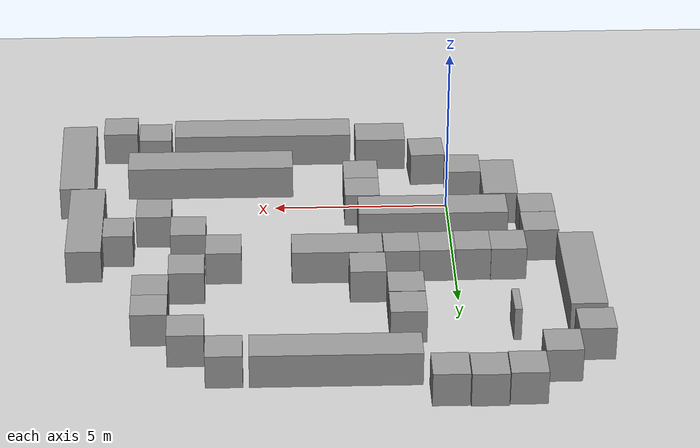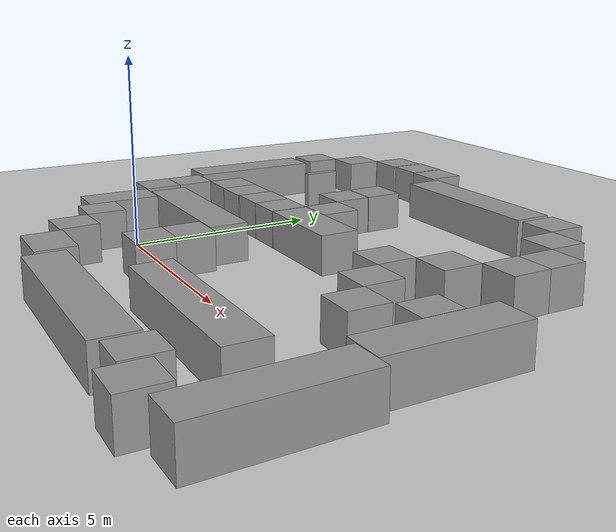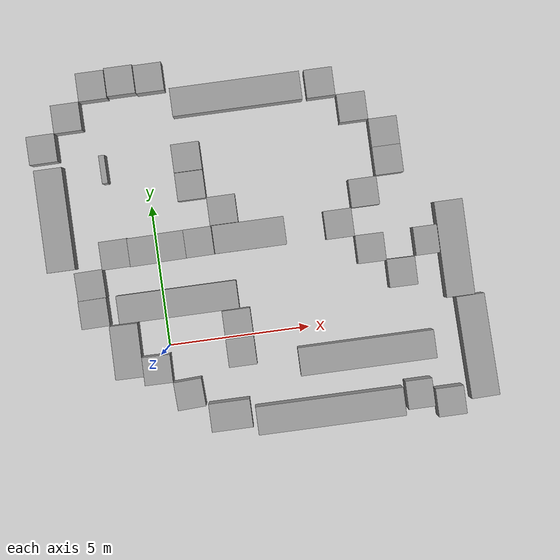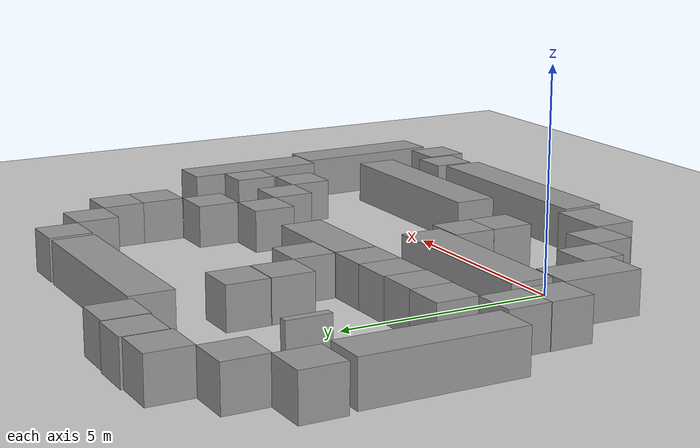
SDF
<sdf version="1.6">
 <world name="default">
  <light name="sun" type="directional">
   <pose>0 0 10 0 -0 0</pose>
   <diffuse>0.8 0.8 0.8 1</diffuse>
   <specular>0.2 0.2 0.2 1</specular>
   <attenuation>
    <range>1000</range>
    <constant>0.9</constant>
    <linear>0.01</linear>
    <quadratic>0.001</quadratic>
   </attenuation>
   <direction>-0.5 0.1 -0.9</direction>
  </light>
  <model name="ground_plane">
   <static>1</static>
   <link name="link">
    <collision name="collision">
     <geometry><plane><normal>0 0 1</normal><size>100 100</size></plane></geometry>
     <surface>
      <contact><collide_bitmask>65535</collide_bitmask></contact>
      <friction><ode><mu>100</mu><mu2>50</mu2></ode></friction>
     </surface>
    </collision>
    <visual name="visual">
     <cast_shadows>0</cast_shadows>
     <geometry><plane><normal>0 0 1</normal><size>100 100</size></plane></geometry>
     <material>
      <script><uri>file://media/materials/scripts/gazebo.material</uri><name>Gazebo/Grey</name></script>
     </material>
    </visual>
   </link>
  </model>
  <gravity>0 0 -9.8</gravity>
  <magnetic_field>6e-06 2.3e-05 -4.2e-05</magnetic_field>
  <atmosphere type="adiabatic"/>
  <physics name="default_physics" default="0" type="ode">
   <max_step_size>0.001</max_step_size>
   <real_time_factor>1</real_time_factor>
   <real_time_update_rate>1000</real_time_update_rate>
  </physics>
  <scene><ambient>0.4 0.4 0.4 1</ambient><background>0.7 0.7 0.7 1</background><shadows>1</shadows></scene>
  <audio><device>default</device></audio>
  <spherical_coordinates>
   <surface_model>EARTH_WGS84</surface_model>
   <latitude_deg>0</latitude_deg>
   <longitude_deg>0</longitude_deg>
   <elevation>0</elevation>
   <heading_deg>0</heading_deg>
  </spherical_coordinates>
  <model name="unit_box">
   <pose>-1.50485 0.02844 0.499995 0 -9e-06 -0.011423</pose>
   <link name="link">
    <inertial>
     <mass>1</mass>
     <inertia>
      <ixx>0.166667</ixx>
      <ixy>0</ixy>
      <ixz>0</ixz>
      <iyy>0.166667</iyy>
      <iyz>0</iyz>
      <izz>0.166667</izz>
     </inertia>
    </inertial>
    <collision name="collision"><geometry><box><size>1 1.90216 1</size></box></geometry></collision>
    <visual name="visual">
     <geometry><box><size>1 1.90216 1</size></box></geometry>
     <material>
      <script><name>Gazebo/Grey</name><uri>file://media/materials/scripts/gazebo.material</uri></script>
     </material>
    </visual>
   </link>
  </model>
  <model name="unit_box_0">
   <pose>0.509835 1.51401 0.498985 0 0.000476 -3.7e-05</pose>
   <link name="link">
    <inertial>
     <mass>1</mass>
     <inertia>
      <ixx>0.166667</ixx>
      <ixy>0</ixy>
      <ixz>0</ixz>
      <iyy>0.166667</iyy>
      <iyz>0</iyz>
      <izz>0.166667</izz>
     </inertia>
    </inertial>
    <collision name="collision"><geometry><box><size>4.26633 1 1</size></box></geometry></collision>
    <visual name="visual">
     <geometry><box><size>4.26633 1 1</size></box></geometry>
     <material>
      <script><name>Gazebo/Grey</name><uri>file://media/materials/scripts/gazebo.material</uri></script>
     </material>
    </visual>
   </link>
  </model>
  <model name="unit_box_1">
   <pose>-0.513737 -0.75613 0.499995 0 -1e-05 -0.011468</pose>
   <link name="link">
    <inertial>
     <mass>1</mass>
     <inertia>
      <ixx>0.166667</ixx>
      <ixy>0</ixy>
      <ixz>0</ixz>
      <iyy>0.166667</iyy>
      <iyz>0</iyz>
      <izz>0.166667</izz>
     </inertia>
    </inertial>
    <collision name="collision"><geometry><box><size>1 1 1</size></box></geometry></collision>
    <visual name="visual">
     <geometry><box><size>1 1 1</size></box></geometry>
     <material>
      <script><name>Gazebo/Grey</name><uri>file://media/materials/scripts/gazebo.material</uri></script>
     </material>
    </visual>
   </link>
  </model>
  <model name="unit_box_2">
   <pose>0.498108 -1.75722 0.499995 1e-05 -0 0.043704</pose>
   <link name="link">
    <inertial>
     <mass>1</mass>
     <inertia>
      <ixx>0.166667</ixx>
      <ixy>0</ixy>
      <ixz>0</ixz>
      <iyy>0.166667</iyy>
      <iyz>0</iyz>
      <izz>0.166667</izz>
     </inertia>
    </inertial>
    <collision name="collision"><geometry><box><size>1 1 1</size></box></geometry></collision>
    <visual name="visual">
     <geometry><box><size>1 1 1</size></box></geometry>
     <material>
      <script><name>Gazebo/Grey</name><uri>file://media/materials/scripts/gazebo.material</uri></script>
     </material>
    </visual>
   </link>
  </model>
  <model name="unit_box_3">
   <pose>2.50413 0.489558 0.499995 1e-05 -0 0</pose>
   <link name="link">
    <inertial>
     <mass>1</mass>
     <inertia>
      <ixx>0.166667</ixx>
      <ixy>0</ixy>
      <ixz>0</ixz>
      <iyy>0.166667</iyy>
      <iyz>0</iyz>
      <izz>0.166667</izz>
     </inertia>
    </inertial>
    <collision name="collision"><geometry><box><size>0.998332 1 1</size></box></geometry></collision>
    <visual name="visual">
     <geometry><box><size>0.998332 1 1</size></box></geometry>
     <material>
      <script><name>Gazebo/Grey</name><uri>file://media/materials/scripts/gazebo.material</uri></script>
     </material>
    </visual>
   </link>
  </model>
  <model name="unit_box_4">
   <pose>1.83355 -2.68893 0.5 0 0 -0.000654</pose>
   <link name="link">
    <inertial>
     <mass>1</mass>
     <inertia>
      <ixx>0.166667</ixx>
      <ixy>0</ixy>
      <ixz>0</ixz>
      <iyy>0.166667</iyy>
      <iyz>0</iyz>
      <izz>0.166667</izz>
     </inertia>
    </inertial>
    <collision name="collision"><geometry><box><size>1.46649 1 1</size></box></geometry></collision>
    <visual name="visual">
     <geometry><box><size>1.46649 1 1</size></box></geometry>
     <material>
      <script><name>Gazebo/Grey</name><uri>file://media/materials/scripts/gazebo.material</uri></script>
     </material>
    </visual>
   </link>
  </model>
  <model name="unit_box_5">
   <pose>2.50231 -0.510458 0.499995 -1e-05 -0 -1.2e-05</pose>
   <link name="link">
    <inertial>
     <mass>1</mass>
     <inertia>
      <ixx>0.166667</ixx>
      <ixy>0</ixy>
      <ixz>0</ixz>
      <iyy>0.166667</iyy>
      <iyz>0</iyz>
      <izz>0.166667</izz>
     </inertia>
    </inertial>
    <collision name="collision"><geometry><box><size>1 1 1</size></box></geometry></collision>
    <visual name="visual">
     <geometry><box><size>1 1 1</size></box></geometry>
     <material>
      <script><name>Gazebo/Grey</name><uri>file://media/materials/scripts/gazebo.material</uri></script>
     </material>
    </visual>
   </link>
  </model>
  <model name="unit_box_6">
   <pose>6.89169 -1.14697 0.498194 0 -0.000749 1.1e-05</pose>
   <link name="link">
    <inertial>
     <mass>1</mass>
     <inertia>
      <ixx>0.166667</ixx>
      <ixy>0</ixy>
      <ixz>0</ixz>
      <iyy>0.166667</iyy>
      <iyz>0</iyz>
      <izz>0.166667</izz>
     </inertia>
    </inertial>
    <collision name="collision"><geometry><box><size>4.82742 1 1</size></box></geometry></collision>
    <visual name="visual">
     <geometry><box><size>4.82742 1 1</size></box></geometry>
     <material>
      <script><name>Gazebo/Grey</name><uri>file://media/materials/scripts/gazebo.material</uri></script>
     </material>
    </visual>
   </link>
  </model>
  <model name="unit_box_7">
   <pose>9.59094 -3.22558 0.499995 -1e-05 0 7.1e-05</pose>
   <link name="link">
    <inertial>
     <mass>1</mass>
     <inertia>
      <ixx>0.166667</ixx>
      <ixy>0</ixy>
      <ixz>0</ixz>
      <iyy>0.166667</iyy>
      <iyz>0</iyz>
      <izz>0.166667</izz>
     </inertia>
    </inertial>
    <collision name="collision"><geometry><box><size>1 1 1</size></box></geometry></collision>
    <visual name="visual">
     <geometry><box><size>1 1 1</size></box></geometry>
     <material>
      <script><name>Gazebo/Grey</name><uri>file://media/materials/scripts/gazebo.material</uri></script>
     </material>
    </visual>
   </link>
  </model>
  <model name="unit_box_8">
   <pose>5.3468 -3.01007 0.499996 -7e-06 0 -0.00087</pose>
   <link name="link">
    <inertial>
     <mass>1</mass>
     <inertia>
      <ixx>0.166667</ixx>
      <ixy>0</ixy>
      <ixz>0</ixz>
      <iyy>0.166667</iyy>
      <iyz>0</iyz>
      <izz>0.166667</izz>
     </inertia>
    </inertial>
    <collision name="collision"><geometry><box><size>5.24415 1 1</size></box></geometry></collision>
    <visual name="visual">
     <geometry><box><size>5.24415 1 1</size></box></geometry>
     <material>
      <script><name>Gazebo/Grey</name><uri>file://media/materials/scripts/gazebo.material</uri></script>
     </material>
    </visual>
   </link>
  </model>
  <model name="unit_box_9">
   <pose>8.54505 -2.81941 0.5 0 0 -0.001685</pose>
   <link name="link">
    <inertial>
     <mass>1</mass>
     <inertia>
      <ixx>0.166667</ixx>
      <ixy>0</ixy>
      <ixz>0</ixz>
      <iyy>0.166667</iyy>
      <iyz>0</iyz>
      <izz>0.166667</izz>
     </inertia>
    </inertial>
    <collision name="collision"><geometry><box><size>0.9506 1 1</size></box></geometry></collision>
    <visual name="visual">
     <geometry><box><size>0.9506 1 1</size></box></geometry>
     <material>
      <script><name>Gazebo/Grey</name><uri>file://media/materials/scripts/gazebo.material</uri></script>
     </material>
    </visual>
   </link>
  </model>
  <model name="unit_box_10">
   <pose>10.4168 2.10106 0.499668 -0.000196 -0 -4.1e-05</pose>
   <link name="link">
    <inertial>
     <mass>1</mass>
     <inertia>
      <ixx>0.166667</ixx>
      <ixy>0</ixy>
      <ixz>0</ixz>
      <iyy>0.166667</iyy>
      <iyz>0</iyz>
      <izz>0.166667</izz>
     </inertia>
    </inertial>
    <collision name="collision"><geometry><box><size>1 3.39208 1</size></box></geometry></collision>
    <visual name="visual">
     <geometry><box><size>1 3.39208 1</size></box></geometry>
     <material>
      <script><name>Gazebo/Grey</name><uri>file://media/materials/scripts/gazebo.material</uri></script>
     </material>
    </visual>
   </link>
  </model>
  <model name="unit_box_11">
   <pose>9.47993 2.5147 0.5 0 -0 -0.002124</pose>
   <link name="link">
    <inertial>
     <mass>1</mass>
     <inertia>
      <ixx>0.166667</ixx>
      <ixy>0</ixy>
      <ixz>0</ixz>
      <iyy>0.166667</iyy>
      <iyz>0</iyz>
      <izz>0.166667</izz>
     </inertia>
    </inertial>
    <collision name="collision"><geometry><box><size>0.854078 1 1</size></box></geometry></collision>
    <visual name="visual">
     <geometry><box><size>0.854078 1 1</size></box></geometry>
     <material>
      <script><name>Gazebo/Grey</name><uri>file://media/materials/scripts/gazebo.material</uri></script>
     </material>
    </visual>
   </link>
  </model>
  <model name="unit_box_12">
   <pose>8.48896 1.51338 0.499995 -1e-05 -0 -0.010852</pose>
   <link name="link">
    <inertial>
     <mass>1</mass>
     <inertia>
      <ixx>0.166667</ixx>
      <ixy>0</ixy>
      <ixz>0</ixz>
      <iyy>0.166667</iyy>
      <iyz>0</iyz>
      <izz>0.166667</izz>
     </inertia>
    </inertial>
    <collision name="collision"><geometry><box><size>1 1 1</size></box></geometry></collision>
    <visual name="visual">
     <geometry><box><size>1 1 1</size></box></geometry>
     <material>
      <script><name>Gazebo/Grey</name><uri>file://media/materials/scripts/gazebo.material</uri></script>
     </material>
    </visual>
   </link>
  </model>
  <model name="unit_box_13">
   <pose>7.49826 2.49474 0.499995 -0 1e-05 -0.00839</pose>
   <link name="link">
    <inertial>
     <mass>1</mass>
     <inertia>
      <ixx>0.166667</ixx>
      <ixy>0</ixy>
      <ixz>0</ixz>
      <iyy>0.166667</iyy>
      <iyz>0</iyz>
      <izz>0.166667</izz>
     </inertia>
    </inertial>
    <collision name="collision"><geometry><box><size>1 1 1</size></box></geometry></collision>
    <visual name="visual">
     <geometry><box><size>1 1 1</size></box></geometry>
     <material>
      <script><name>Gazebo/Grey</name><uri>file://media/materials/scripts/gazebo.material</uri></script>
     </material>
    </visual>
   </link>
  </model>
  <model name="unit_box_14">
   <pose>6.49979 3.49003 0.499995 1e-05 -0 0</pose>
   <link name="link">
    <inertial>
     <mass>1</mass>
     <inertia>
      <ixx>0.166667</ixx>
      <ixy>0</ixy>
      <ixz>0</ixz>
      <iyy>0.166667</iyy>
      <iyz>0</iyz>
      <izz>0.166667</izz>
     </inertia>
    </inertial>
    <collision name="collision"><geometry><box><size>1 1 1</size></box></geometry></collision>
    <visual name="visual">
     <geometry><box><size>1 1 1</size></box></geometry>
     <material>
      <script><name>Gazebo/Grey</name><uri>file://media/materials/scripts/gazebo.material</uri></script>
     </material>
    </visual>
   </link>
  </model>
  <model name="unit_box_15">
   <pose>7.52273 4.47832 0.499995 0 1e-05 0</pose>
   <link name="link">
    <inertial>
     <mass>1</mass>
     <inertia>
      <ixx>0.166667</ixx>
      <ixy>0</ixy>
      <ixz>0</ixz>
      <iyy>0.166667</iyy>
      <iyz>0</iyz>
      <izz>0.166667</izz>
     </inertia>
    </inertial>
    <collision name="collision"><geometry><box><size>1 1 1</size></box></geometry></collision>
    <visual name="visual">
     <geometry><box><size>1 1 1</size></box></geometry>
     <material>
      <script><name>Gazebo/Grey</name><uri>file://media/materials/scripts/gazebo.material</uri></script>
     </material>
    </visual>
   </link>
  </model>
  <model name="unit_box_16">
   <pose>8.5092 5.49916 0.499995 0 1e-05 6e-06</pose>
   <link name="link">
    <inertial>
     <mass>1</mass>
     <inertia>
      <ixx>0.166667</ixx>
      <ixy>0</ixy>
      <ixz>0</ixz>
      <iyy>0.166667</iyy>
      <iyz>0</iyz>
      <izz>0.166667</izz>
     </inertia>
    </inertial>
    <collision name="collision"><geometry><box><size>1 1 1</size></box></geometry></collision>
    <visual name="visual">
     <geometry><box><size>1 1 1</size></box></geometry>
     <material>
      <script><name>Gazebo/Grey</name><uri>file://media/materials/scripts/gazebo.material</uri></script>
     </material>
    </visual>
   </link>
  </model>
  <model name="unit_box_17">
   <pose>8.50912 6.49918 0.499995 1e-05 -0 -8e-06</pose>
   <link name="link">
    <inertial>
     <mass>1</mass>
     <inertia>
      <ixx>0.166667</ixx>
      <ixy>0</ixy>
      <ixz>0</ixz>
      <iyy>0.166667</iyy>
      <iyz>0</iyz>
      <izz>0.166667</izz>
     </inertia>
    </inertial>
    <collision name="collision"><geometry><box><size>1 1 1</size></box></geometry></collision>
    <visual name="visual">
     <geometry><box><size>1 1 1</size></box></geometry>
     <material>
      <script><name>Gazebo/Grey</name><uri>file://media/materials/scripts/gazebo.material</uri></script>
     </material>
    </visual>
   </link>
  </model>
  <model name="unit_box_18">
   <pose>7.51204 7.50422 0.499995 1e-05 -0 0</pose>
   <link name="link">
    <inertial>
     <mass>1</mass>
     <inertia>
      <ixx>0.166667</ixx>
      <ixy>0</ixy>
      <ixz>0</ixz>
      <iyy>0.166667</iyy>
      <iyz>0</iyz>
      <izz>0.166667</izz>
     </inertia>
    </inertial>
    <collision name="collision"><geometry><box><size>1 1 1</size></box></geometry></collision>
    <visual name="visual">
     <geometry><box><size>1 1 1</size></box></geometry>
     <material>
      <script><name>Gazebo/Grey</name><uri>file://media/materials/scripts/gazebo.material</uri></script>
     </material>
    </visual>
   </link>
  </model>
  <model name="unit_box_19">
   <pose>6.48276 8.50432 0.499995 0 1e-05 0</pose>
   <link name="link">
    <inertial>
     <mass>1</mass>
     <inertia>
      <ixx>0.166667</ixx>
      <ixy>0</ixy>
      <ixz>0</ixz>
      <iyy>0.166667</iyy>
      <iyz>0</iyz>
      <izz>0.166667</izz>
     </inertia>
    </inertial>
    <collision name="collision"><geometry><box><size>1 1 1</size></box></geometry></collision>
    <visual name="visual">
     <geometry><box><size>1 1 1</size></box></geometry>
     <material>
      <script><name>Gazebo/Grey</name><uri>file://media/materials/scripts/gazebo.material</uri></script>
     </material>
    </visual>
   </link>
  </model>
  <model name="unit_box_20">
   <pose>3.51808 8.50572 0.498555 0 -0.000628 6e-06</pose>
   <link name="link">
    <inertial>
     <mass>1</mass>
     <inertia>
      <ixx>0.166667</ixx>
      <ixy>0</ixy>
      <ixz>0</ixz>
      <iyy>0.166667</iyy>
      <iyz>0</iyz>
      <izz>0.166667</izz>
     </inertia>
    </inertial>
    <collision name="collision"><geometry><box><size>4.60016 1 1</size></box></geometry></collision>
    <visual name="visual">
     <geometry><box><size>4.60016 1 1</size></box></geometry>
     <material>
      <script><name>Gazebo/Grey</name><uri>file://media/materials/scripts/gazebo.material</uri></script>
     </material>
    </visual>
   </link>
  </model>
  <model name="unit_box_21">
   <pose>3.32061 3.51766 0.499929 0 -5.6e-05 0</pose>
   <link name="link">
    <inertial>
     <mass>1</mass>
     <inertia>
      <ixx>0.166667</ixx>
      <ixy>0</ixy>
      <ixz>0</ixz>
      <iyy>0.166667</iyy>
      <iyz>0</iyz>
      <izz>0.166667</izz>
     </inertia>
    </inertial>
    <collision name="collision"><geometry><box><size>2.5494 1 1</size></box></geometry></collision>
    <visual name="visual">
     <geometry><box><size>2.5494 1 1</size></box></geometry>
     <material>
      <script><name>Gazebo/Grey</name><uri>file://media/materials/scripts/gazebo.material</uri></script>
     </material>
    </visual>
   </link>
  </model>
  <model name="unit_box_22">
   <pose>2.50228 4.52942 0.499995 0 1e-05 0</pose>
   <link name="link">
    <inertial>
     <mass>1</mass>
     <inertia>
      <ixx>0.166667</ixx>
      <ixy>0</ixy>
      <ixz>0</ixz>
      <iyy>0.166667</iyy>
      <iyz>0</iyz>
      <izz>0.166667</izz>
     </inertia>
    </inertial>
    <collision name="collision"><geometry><box><size>1 1 1</size></box></geometry></collision>
    <visual name="visual">
     <geometry><box><size>1 1 1</size></box></geometry>
     <material>
      <script><name>Gazebo/Grey</name><uri>file://media/materials/scripts/gazebo.material</uri></script>
     </material>
    </visual>
   </link>
  </model>
  <model name="unit_box_23">
   <pose>1.49501 5.52177 0.499995 1e-05 0 -0.001746</pose>
   <link name="link">
    <inertial>
     <mass>1</mass>
     <inertia>
      <ixx>0.166667</ixx>
      <ixy>0</ixy>
      <ixz>0</ixz>
      <iyy>0.166667</iyy>
      <iyz>0</iyz>
      <izz>0.166667</izz>
     </inertia>
    </inertial>
    <collision name="collision"><geometry><box><size>1 1 1</size></box></geometry></collision>
    <visual name="visual">
     <geometry><box><size>1 1 1</size></box></geometry>
     <material>
      <script><name>Gazebo/Grey</name><uri>file://media/materials/scripts/gazebo.material</uri></script>
     </material>
    </visual>
   </link>
  </model>
  <model name="unit_box_24">
   <pose>1.52734 3.51078 0.499995 0 1e-05 0.00732</pose>
   <link name="link">
    <inertial>
     <mass>1</mass>
     <inertia>
      <ixx>0.166667</ixx>
      <ixy>0</ixy>
      <ixz>0</ixz>
      <iyy>0.166667</iyy>
      <iyz>0</iyz>
      <izz>0.166667</izz>
     </inertia>
    </inertial>
    <collision name="collision"><geometry><box><size>1 1 1</size></box></geometry></collision>
    <visual name="visual">
     <geometry><box><size>1 1 1</size></box></geometry>
     <material>
      <script><name>Gazebo/Grey</name><uri>file://media/materials/scripts/gazebo.material</uri></script>
     </material>
    </visual>
   </link>
  </model>
  <model name="unit_box_25">
   <pose>0.527362 3.49975 0.499995 0 1e-05 0.007321</pose>
   <link name="link">
    <inertial>
     <mass>1</mass>
     <inertia>
      <ixx>0.166667</ixx>
      <ixy>0</ixy>
      <ixz>0</ixz>
      <iyy>0.166667</iyy>
      <iyz>0</iyz>
      <izz>0.166667</izz>
     </inertia>
    </inertial>
    <collision name="collision"><geometry><box><size>1 1 1</size></box></geometry></collision>
    <visual name="visual">
     <geometry><box><size>1 1 1</size></box></geometry>
     <material>
      <script><name>Gazebo/Grey</name><uri>file://media/materials/scripts/gazebo.material</uri></script>
     </material>
    </visual>
   </link>
  </model>
  <model name="unit_box_26">
   <pose>-0.472465 3.47009 0.499995 0 1e-05 0.00735</pose>
   <link name="link">
    <inertial>
     <mass>1</mass>
     <inertia>
      <ixx>0.166667</ixx>
      <ixy>0</ixy>
      <ixz>0</ixz>
      <iyy>0.166667</iyy>
      <iyz>0</iyz>
      <izz>0.166667</izz>
     </inertia>
    </inertial>
    <collision name="collision"><geometry><box><size>1 1 1</size></box></geometry></collision>
    <visual name="visual">
     <geometry><box><size>1 1 1</size></box></geometry>
     <material>
      <script><name>Gazebo/Grey</name><uri>file://media/materials/scripts/gazebo.material</uri></script>
     </material>
    </visual>
   </link>
  </model>
  <model name="unit_box_27">
   <pose>-1.47264 3.47931 0.499995 0 1e-05 0.007503</pose>
   <link name="link">
    <inertial>
     <mass>1</mass>
     <inertia>
      <ixx>0.166667</ixx>
      <ixy>0</ixy>
      <ixz>0</ixz>
      <iyy>0.166667</iyy>
      <iyz>0</iyz>
      <izz>0.166667</izz>
     </inertia>
    </inertial>
    <collision name="collision"><geometry><box><size>1 1 1</size></box></geometry></collision>
    <visual name="visual">
     <geometry><box><size>1 1 1</size></box></geometry>
     <material>
      <script><name>Gazebo/Grey</name><uri>file://media/materials/scripts/gazebo.material</uri></script>
     </material>
    </visual>
   </link>
  </model>
  <model name="unit_box_28">
   <pose>-2.46034 2.5099 0.499995 0 1e-05 0.018547</pose>
   <link name="link">
    <inertial>
     <mass>1</mass>
     <inertia>
      <ixx>0.166667</ixx>
      <ixy>0</ixy>
      <ixz>0</ixz>
      <iyy>0.166667</iyy>
      <iyz>0</iyz>
      <izz>0.166667</izz>
     </inertia>
    </inertial>
    <collision name="collision"><geometry><box><size>1 1 1</size></box></geometry></collision>
    <visual name="visual">
     <geometry><box><size>1 1 1</size></box></geometry>
     <material>
      <script><name>Gazebo/Grey</name><uri>file://media/materials/scripts/gazebo.material</uri></script>
     </material>
    </visual>
   </link>
  </model>
  <model name="unit_box_29">
   <pose>-2.46101 1.50724 0.499995 0 1e-05 0.013449</pose>
   <link name="link">
    <inertial>
     <mass>1</mass>
     <inertia>
      <ixx>0.166667</ixx>
      <ixy>0</ixy>
      <ixz>0</ixz>
      <iyy>0.166667</iyy>
      <iyz>0</iyz>
      <izz>0.166667</izz>
     </inertia>
    </inertial>
    <collision name="collision"><geometry><box><size>1 1 1</size></box></geometry></collision>
    <visual name="visual">
     <geometry><box><size>1 1 1</size></box></geometry>
     <material>
      <script><name>Gazebo/Grey</name><uri>file://media/materials/scripts/gazebo.material</uri></script>
     </material>
    </visual>
   </link>
  </model>
  <model name="unit_box_30">
   <pose>1.49594 6.53453 0.499995 -1e-05 -0 0.001756</pose>
   <link name="link">
    <inertial>
     <mass>1</mass>
     <inertia>
      <ixx>0.166667</ixx>
      <ixy>0</ixy>
      <ixz>0</ixz>
      <iyy>0.166667</iyy>
      <iyz>0</iyz>
      <izz>0.166667</izz>
     </inertia>
    </inertial>
    <collision name="collision"><geometry><box><size>1 1 1</size></box></geometry></collision>
    <visual name="visual">
     <geometry><box><size>1 1 1</size></box></geometry>
     <material>
      <script><name>Gazebo/Grey</name><uri>file://media/materials/scripts/gazebo.material</uri></script>
     </material>
    </visual>
   </link>
  </model>
  <model name="unit_box_31">
   <pose>-1.45807 6.49243 0.499997 7e-06 1e-06 0.006836</pose>
   <link name="link">
    <inertial>
     <mass>1</mass>
     <inertia>
      <ixx>0.166667</ixx>
      <ixy>0</ixy>
      <ixz>0</ixz>
      <iyy>0.166667</iyy>
      <iyz>0</iyz>
      <izz>0.166667</izz>
     </inertia>
    </inertial>
    <collision name="collision"><geometry><box><size>0.204187 1 1</size></box></geometry></collision>
    <visual name="visual">
     <geometry><box><size>0.204187 1 1</size></box></geometry>
     <material>
      <script><name>Gazebo/Grey</name><uri>file://media/materials/scripts/gazebo.material</uri></script>
     </material>
    </visual>
   </link>
  </model>
  <model name="unit_box_32">
   <pose>-3.5062 7.47957 0.499995 -0 1e-05 0.006877</pose>
   <link name="link">
    <inertial>
     <mass>1</mass>
     <inertia>
      <ixx>0.166667</ixx>
      <ixy>0</ixy>
      <ixz>0</ixz>
      <iyy>0.166667</iyy>
      <iyz>0</iyz>
      <izz>0.166667</izz>
     </inertia>
    </inertial>
    <collision name="collision"><geometry><box><size>1 1 1</size></box></geometry></collision>
    <visual name="visual">
     <geometry><box><size>1 1 1</size></box></geometry>
     <material>
      <script><name>Gazebo/Grey</name><uri>file://media/materials/scripts/gazebo.material</uri></script>
     </material>
    </visual>
   </link>
  </model>
  <model name="unit_box_33">
   <pose>-2.51119 8.46121 0.499995 -1e-05 0 0.003421</pose>
   <link name="link">
    <inertial>
     <mass>1</mass>
     <inertia>
      <ixx>0.166667</ixx>
      <ixy>0</ixy>
      <ixz>0</ixz>
      <iyy>0.166667</iyy>
      <iyz>0</iyz>
      <izz>0.166667</izz>
     </inertia>
    </inertial>
    <collision name="collision"><geometry><box><size>1 1 1</size></box></geometry></collision>
    <visual name="visual">
     <geometry><box><size>1 1 1</size></box></geometry>
     <material>
      <script><name>Gazebo/Grey</name><uri>file://media/materials/scripts/gazebo.material</uri></script>
     </material>
    </visual>
   </link>
  </model>
  <model name="unit_box_34">
   <pose>-1.49707 9.45885 0.499995 1e-05 -0 0</pose>
   <link name="link">
    <inertial>
     <mass>1</mass>
     <inertia>
      <ixx>0.166667</ixx>
      <ixy>0</ixy>
      <ixz>0</ixz>
      <iyy>0.166667</iyy>
      <iyz>0</iyz>
      <izz>0.166667</izz>
     </inertia>
    </inertial>
    <collision name="collision"><geometry><box><size>1 1 1</size></box></geometry></collision>
    <visual name="visual">
     <geometry><box><size>1 1 1</size></box></geometry>
     <material>
      <script><name>Gazebo/Grey</name><uri>file://media/materials/scripts/gazebo.material</uri></script>
     </material>
    </visual>
   </link>
  </model>
  <model name="unit_box_35">
   <pose>-0.477091 9.51078 0.499995 0 1e-05 0</pose>
   <link name="link">
    <inertial>
     <mass>1</mass>
     <inertia>
      <ixx>0.166667</ixx>
      <ixy>0</ixy>
      <ixz>0</ixz>
      <iyy>0.166667</iyy>
      <iyz>0</iyz>
      <izz>0.166667</izz>
     </inertia>
    </inertial>
    <collision name="collision"><geometry><box><size>1 1 1</size></box></geometry></collision>
    <visual name="visual">
     <geometry><box><size>1 1 1</size></box></geometry>
     <material>
      <script><name>Gazebo/Grey</name><uri>file://media/materials/scripts/gazebo.material</uri></script>
     </material>
    </visual>
   </link>
  </model>
  <model name="unit_box_36">
   <pose>0.546208 9.47274 0.499995 1e-05 -0 0</pose>
   <link name="link">
    <inertial>
     <mass>1</mass>
     <inertia>
      <ixx>0.166667</ixx>
      <ixy>0</ixy>
      <ixz>0</ixz>
      <iyy>0.166667</iyy>
      <iyz>0</iyz>
      <izz>0.166667</izz>
     </inertia>
    </inertial>
    <collision name="collision"><geometry><box><size>1 1 1</size></box></geometry></collision>
    <visual name="visual">
     <geometry><box><size>1 1 1</size></box></geometry>
     <material>
      <script><name>Gazebo/Grey</name><uri>file://media/materials/scripts/gazebo.material</uri></script>
     </material>
    </visual>
   </link>
  </model>
  <model name="unit_box_37">
   <pose>10.78 -1.41965 0.499996 1e-06 -4e-06 0.020903</pose>
   <link name="link">
    <inertial>
     <mass>1</mass>
     <inertia>
      <ixx>0.166667</ixx>
      <ixy>0</ixy>
      <ixz>0</ixz>
      <iyy>0.166667</iyy>
      <iyz>0</iyz>
      <izz>0.166667</izz>
     </inertia>
    </inertial>
    <collision name="collision"><geometry><box><size>1 3.62093 1</size></box></geometry></collision>
    <visual name="visual">
     <geometry><box><size>1 3.62093 1</size></box></geometry>
     <material>
      <script><name>Gazebo/Grey</name><uri>file://media/materials/scripts/gazebo.material</uri></script>
     </material>
    </visual>
   </link>
  </model>
  <light name="user_directional_light_0" type="directional">
   <pose>3.77112 -4.84817 1 0 -0 0</pose>
   <diffuse>0.5 0.5 0.5 1</diffuse>
   <specular>0.1 0.1 0.1 1</specular>
   <direction>0.1 0.1 -0.9</direction>
   <attenuation>
    <range>20</range>
    <constant>0.5</constant>
    <linear>0.01</linear>
    <quadratic>0.001</quadratic>
   </attenuation>
  </light>
  <model name="unit_box_38">
   <pose>-3.40391 4.94935 0.499531 0.000258 -0 0</pose>
   <link name="link">
    <inertial>
     <mass>1</mass>
     <inertia>
      <ixx>0.166667</ixx>
      <ixy>0</ixy>
      <ixz>0</ixz>
      <iyy>0.166667</iyy>
      <iyz>0</iyz>
      <izz>0.166667</izz>
     </inertia>
    </inertial>
    <collision name="collision"><geometry><box><size>1 3.63518 1</size></box></geometry></collision>
    <visual name="visual">
     <geometry><box><size>1 3.63518 1</size></box></geometry>
     <material>
      <script><name>Gazebo/Grey</name><uri>file://media/materials/scripts/gazebo.material</uri></script>
     </material>
    </visual>
   </link>
  </model>
 </world>
</sdf>
